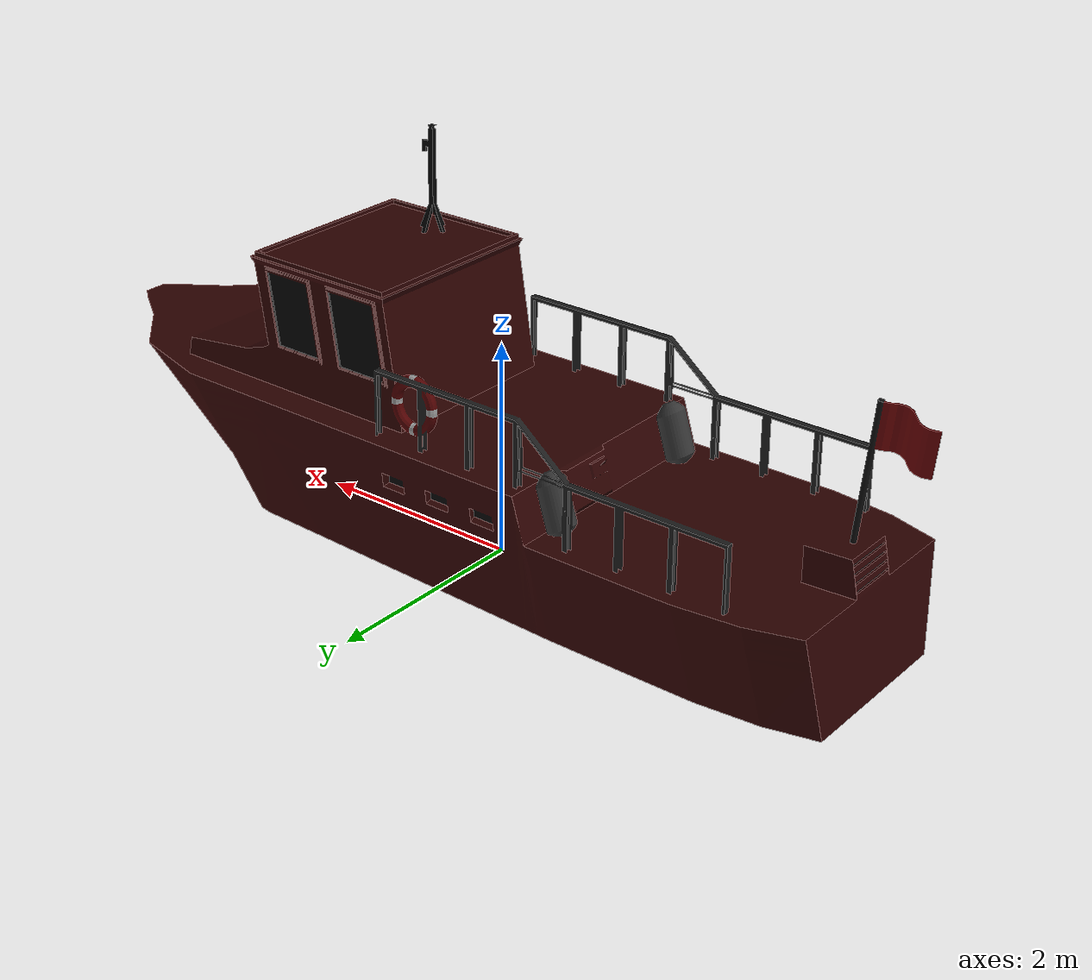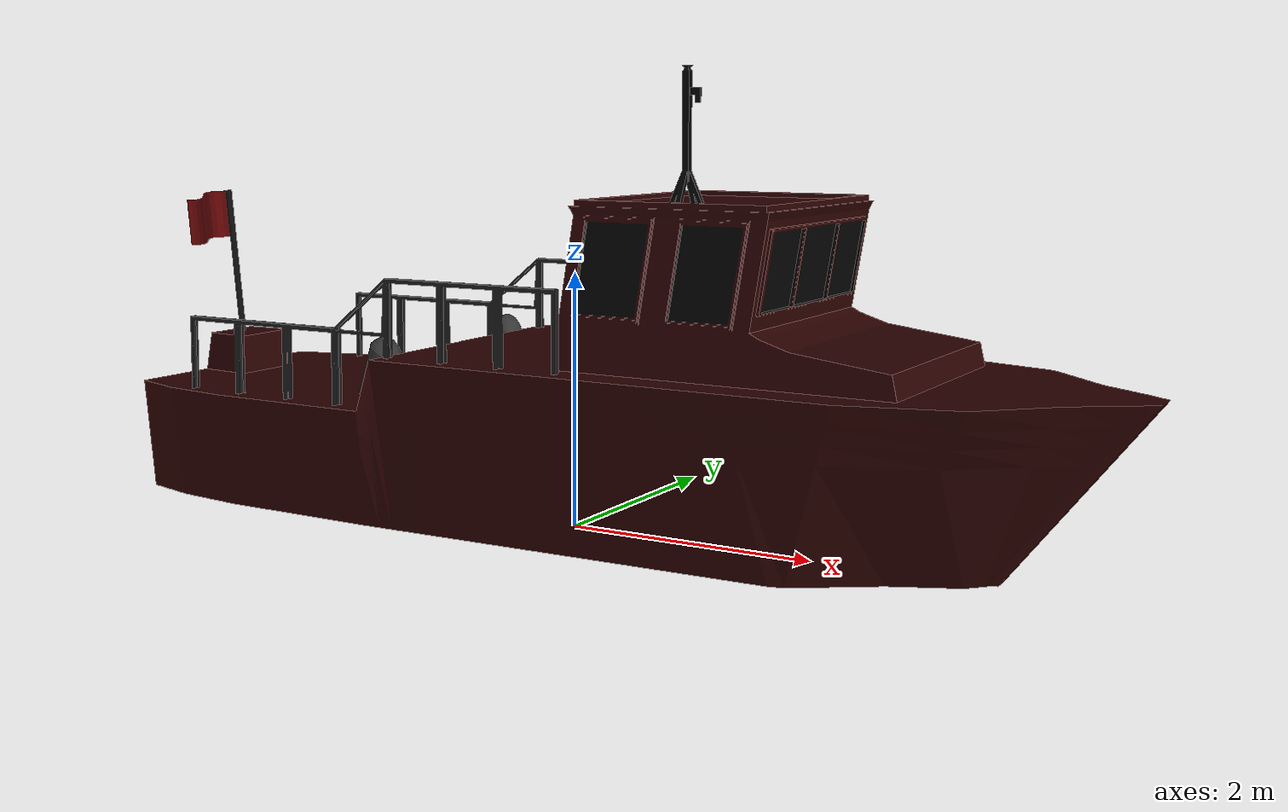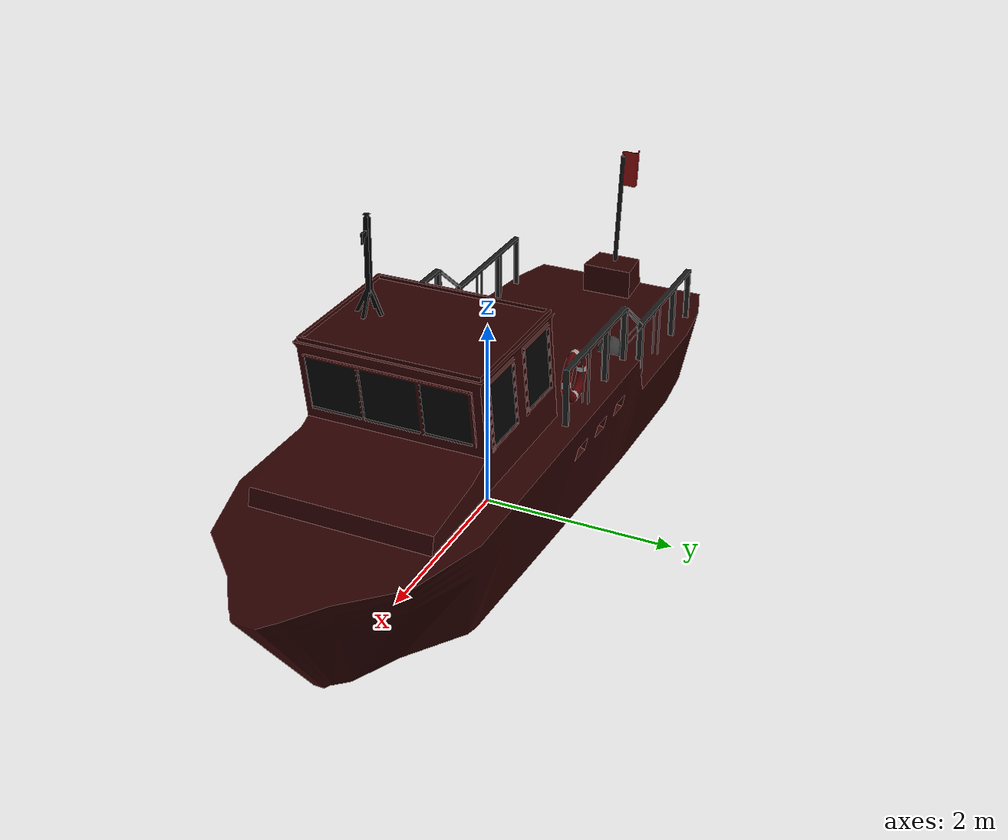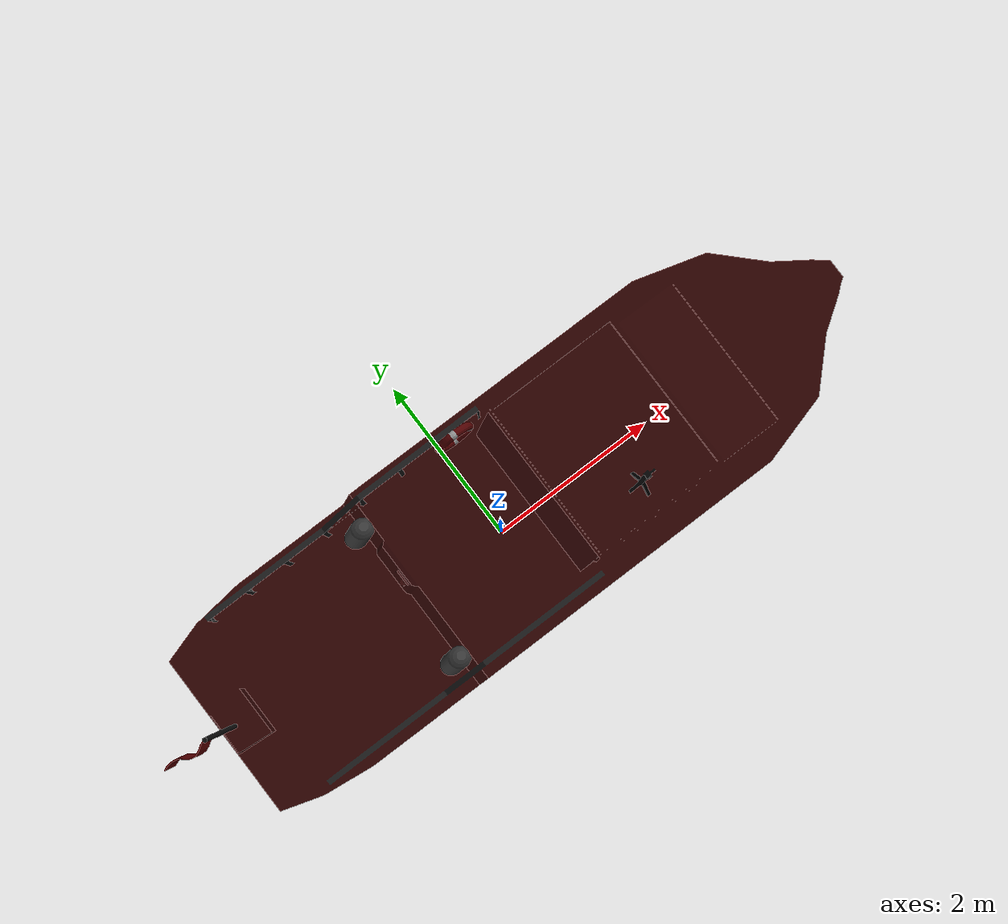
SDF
<?xml version="1.0"?>
<sdf version="1.5">
  <model name="aquabot_redboat">
    <static>true</static>
    <link name="link">
      <visual name="visual">
        <pose>0.0 0.0 0.0 0 0 0 </pose>
        <geometry>
          <mesh>
            <uri>mesh/redboat.dae</uri>
          </mesh>
        </geometry>
      </visual>
    </link>
  </model>
</sdf>
